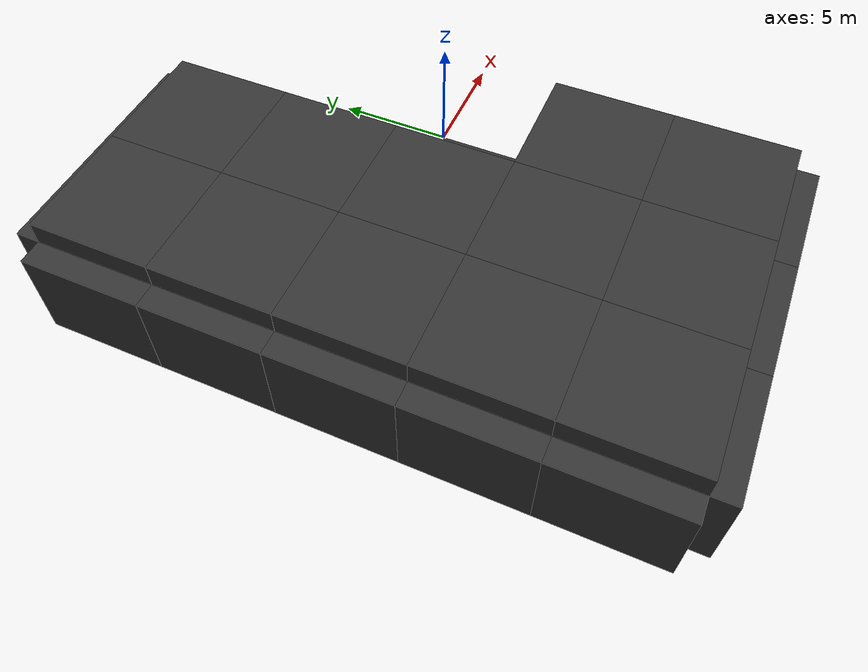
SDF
<sdf version="1.7">
 <world name="RG1">
  <model name="floor_1">
   <static>true</static>
   <pose>-12.5 -12.5 -0.5 0.0 0.0 0.0</pose>
   <link name="floor_1-base-link">
    <visual name="floor_1-visual">
     <geometry><box><size>5 5 1.0</size></box></geometry>
     <material><diffuse>0.2 0.2 0.2 1</diffuse><specular>0.1 0.1 0.1 1</specular></material>
    </visual>
    <collision name="floor_1-collision"><geometry><box><size>5 5 1.0</size></box></geometry></collision>
   </link>
  </model>
  <model name="ceiling_1">
   <static>true</static>
   <pose>-12.5 -12.5 4.5 0.0 0.0 0.0</pose>
   <link name="ceiling_1-base-link">
    <visual name="ceiling_1-visual">
     <geometry><box><size>5 5 1.0</size></box></geometry>
     <material><diffuse>0.2 0.2 0.2 1</diffuse><specular>0.1 0.1 0.1 1</specular></material>
    </visual>
    <collision name="ceiling_1-collision"><geometry><box><size>5 5 1.0</size></box></geometry></collision>
    <light type="point" name="ceiling_1-light">
     <pose>0 0 -1 0 0 0</pose>
     <cast_shadows>false</cast_shadows>
     <diffuse>0.8 0.8 0.8 1</diffuse>
     <attenuation>
      <range>10</range>
      <constant>0.8</constant>
      <linear>0.05</linear>
      <quadratic>0.01</quadratic>
     </attenuation>
    </light>
   </link>
  </model>
  <model name="wall_1">
   <static>true</static>
   <pose>-15.5 -12.5 2.0 0.0 0.0 1.570796326795</pose>
   <link name="wall_1-base-link">
    <visual name="wall_1-visual">
     <geometry><box><size>5 1 4</size></box></geometry>
     <material><diffuse>0.2 0.2 0.2 1</diffuse><specular>0.1 0.1 0.1 1</specular></material>
    </visual>
    <collision name="wall_1-collision"><geometry><box><size>5 1 4</size></box></geometry></collision>
   </link>
  </model>
  <model name="wall_2">
   <static>true</static>
   <pose>-12.5 -15.5 2.0 0.0 0.0 0.0</pose>
   <link name="wall_2-base-link">
    <visual name="wall_2-visual">
     <geometry><box><size>5 1 4</size></box></geometry>
     <material><diffuse>0.2 0.2 0.2 1</diffuse><specular>0.1 0.1 0.1 1</specular></material>
    </visual>
    <collision name="wall_2-collision"><geometry><box><size>5 1 4</size></box></geometry></collision>
   </link>
  </model>
  <model name="floor_2">
   <static>true</static>
   <pose>-12.5 -7.5 -0.5 0.0 0.0 0.0</pose>
   <link name="floor_2-base-link">
    <visual name="floor_2-visual">
     <geometry><box><size>5 5 1.0</size></box></geometry>
     <material><diffuse>0.2 0.2 0.2 1</diffuse><specular>0.1 0.1 0.1 1</specular></material>
    </visual>
    <collision name="floor_2-collision"><geometry><box><size>5 5 1.0</size></box></geometry></collision>
   </link>
  </model>
  <model name="ceiling_2">
   <static>true</static>
   <pose>-12.5 -7.5 4.5 0.0 0.0 0.0</pose>
   <link name="ceiling_2-base-link">
    <visual name="ceiling_2-visual">
     <geometry><box><size>5 5 1.0</size></box></geometry>
     <material><diffuse>0.2 0.2 0.2 1</diffuse><specular>0.1 0.1 0.1 1</specular></material>
    </visual>
    <collision name="ceiling_2-collision"><geometry><box><size>5 5 1.0</size></box></geometry></collision>
    <light type="point" name="ceiling_2-light">
     <pose>0 0 -1 0 0 0</pose>
     <cast_shadows>false</cast_shadows>
     <diffuse>0.8 0.8 0.8 1</diffuse>
     <attenuation>
      <range>10</range>
      <constant>0.8</constant>
      <linear>0.05</linear>
      <quadratic>0.01</quadratic>
     </attenuation>
    </light>
   </link>
  </model>
  <model name="wall_3">
   <static>true</static>
   <pose>-15.5 -7.5 2.0 0.0 0.0 1.570796326795</pose>
   <link name="wall_3-base-link">
    <visual name="wall_3-visual">
     <geometry><box><size>5 1 4</size></box></geometry>
     <material><diffuse>0.2 0.2 0.2 1</diffuse><specular>0.1 0.1 0.1 1</specular></material>
    </visual>
    <collision name="wall_3-collision"><geometry><box><size>5 1 4</size></box></geometry></collision>
   </link>
  </model>
  <model name="floor_3">
   <static>true</static>
   <pose>-12.5 -2.5 -0.5 0.0 0.0 0.0</pose>
   <link name="floor_3-base-link">
    <visual name="floor_3-visual">
     <geometry><box><size>5 5 1.0</size></box></geometry>
     <material><diffuse>0.2 0.2 0.2 1</diffuse><specular>0.1 0.1 0.1 1</specular></material>
    </visual>
    <collision name="floor_3-collision"><geometry><box><size>5 5 1.0</size></box></geometry></collision>
   </link>
  </model>
  <model name="ceiling_3">
   <static>true</static>
   <pose>-12.5 -2.5 4.5 0.0 0.0 0.0</pose>
   <link name="ceiling_3-base-link">
    <visual name="ceiling_3-visual">
     <geometry><box><size>5 5 1.0</size></box></geometry>
     <material><diffuse>0.2 0.2 0.2 1</diffuse><specular>0.1 0.1 0.1 1</specular></material>
    </visual>
    <collision name="ceiling_3-collision"><geometry><box><size>5 5 1.0</size></box></geometry></collision>
    <light type="point" name="ceiling_3-light">
     <pose>0 0 -1 0 0 0</pose>
     <cast_shadows>false</cast_shadows>
     <diffuse>0.8 0.8 0.8 1</diffuse>
     <attenuation>
      <range>10</range>
      <constant>0.8</constant>
      <linear>0.05</linear>
      <quadratic>0.01</quadratic>
     </attenuation>
    </light>
   </link>
  </model>
  <model name="wall_4">
   <static>true</static>
   <pose>-15.5 -2.5 2.0 0.0 0.0 1.570796326795</pose>
   <link name="wall_4-base-link">
    <visual name="wall_4-visual">
     <geometry><box><size>5 1 4</size></box></geometry>
     <material><diffuse>0.2 0.2 0.2 1</diffuse><specular>0.1 0.1 0.1 1</specular></material>
    </visual>
    <collision name="wall_4-collision"><geometry><box><size>5 1 4</size></box></geometry></collision>
   </link>
  </model>
  <model name="floor_4">
   <static>true</static>
   <pose>-12.5 2.5 -0.5 0.0 0.0 0.0</pose>
   <link name="floor_4-base-link">
    <visual name="floor_4-visual">
     <geometry><box><size>5 5 1.0</size></box></geometry>
     <material><diffuse>0.2 0.2 0.2 1</diffuse><specular>0.1 0.1 0.1 1</specular></material>
    </visual>
    <collision name="floor_4-collision"><geometry><box><size>5 5 1.0</size></box></geometry></collision>
   </link>
  </model>
  <model name="ceiling_4">
   <static>true</static>
   <pose>-12.5 2.5 4.5 0.0 0.0 0.0</pose>
   <link name="ceiling_4-base-link">
    <visual name="ceiling_4-visual">
     <geometry><box><size>5 5 1.0</size></box></geometry>
     <material><diffuse>0.2 0.2 0.2 1</diffuse><specular>0.1 0.1 0.1 1</specular></material>
    </visual>
    <collision name="ceiling_4-collision"><geometry><box><size>5 5 1.0</size></box></geometry></collision>
    <light type="point" name="ceiling_4-light">
     <pose>0 0 -1 0 0 0</pose>
     <cast_shadows>false</cast_shadows>
     <diffuse>0.8 0.8 0.8 1</diffuse>
     <attenuation>
      <range>10</range>
      <constant>0.8</constant>
      <linear>0.05</linear>
      <quadratic>0.01</quadratic>
     </attenuation>
    </light>
   </link>
  </model>
  <model name="wall_5">
   <static>true</static>
   <pose>-15.5 2.5 2.0 0.0 0.0 1.570796326795</pose>
   <link name="wall_5-base-link">
    <visual name="wall_5-visual">
     <geometry><box><size>5 1 4</size></box></geometry>
     <material><diffuse>0.2 0.2 0.2 1</diffuse><specular>0.1 0.1 0.1 1</specular></material>
    </visual>
    <collision name="wall_5-collision"><geometry><box><size>5 1 4</size></box></geometry></collision>
   </link>
  </model>
  <model name="floor_5">
   <static>true</static>
   <pose>-12.5 7.5 -0.5 0.0 0.0 0.0</pose>
   <link name="floor_5-base-link">
    <visual name="floor_5-visual">
     <geometry><box><size>5 5 1.0</size></box></geometry>
     <material><diffuse>0.2 0.2 0.2 1</diffuse><specular>0.1 0.1 0.1 1</specular></material>
    </visual>
    <collision name="floor_5-collision"><geometry><box><size>5 5 1.0</size></box></geometry></collision>
   </link>
  </model>
  <model name="ceiling_5">
   <static>true</static>
   <pose>-12.5 7.5 4.5 0.0 0.0 0.0</pose>
   <link name="ceiling_5-base-link">
    <visual name="ceiling_5-visual">
     <geometry><box><size>5 5 1.0</size></box></geometry>
     <material><diffuse>0.2 0.2 0.2 1</diffuse><specular>0.1 0.1 0.1 1</specular></material>
    </visual>
    <collision name="ceiling_5-collision"><geometry><box><size>5 5 1.0</size></box></geometry></collision>
    <light type="point" name="ceiling_5-light">
     <pose>0 0 -1 0 0 0</pose>
     <cast_shadows>false</cast_shadows>
     <diffuse>0.8 0.8 0.8 1</diffuse>
     <attenuation>
      <range>10</range>
      <constant>0.8</constant>
      <linear>0.05</linear>
      <quadratic>0.01</quadratic>
     </attenuation>
    </light>
   </link>
  </model>
  <model name="wall_6">
   <static>true</static>
   <pose>-15.5 7.5 2.0 0.0 0.0 1.570796326795</pose>
   <link name="wall_6-base-link">
    <visual name="wall_6-visual">
     <geometry><box><size>5 1 4</size></box></geometry>
     <material><diffuse>0.2 0.2 0.2 1</diffuse><specular>0.1 0.1 0.1 1</specular></material>
    </visual>
    <collision name="wall_6-collision"><geometry><box><size>5 1 4</size></box></geometry></collision>
   </link>
  </model>
  <model name="wall_7">
   <static>true</static>
   <pose>-12.5 10.5 2.0 0.0 0.0 0.0</pose>
   <link name="wall_7-base-link">
    <visual name="wall_7-visual">
     <geometry><box><size>5 1 4</size></box></geometry>
     <material><diffuse>0.2 0.2 0.2 1</diffuse><specular>0.1 0.1 0.1 1</specular></material>
    </visual>
    <collision name="wall_7-collision"><geometry><box><size>5 1 4</size></box></geometry></collision>
   </link>
  </model>
  <model name="floor_6">
   <static>true</static>
   <pose>-7.5 -12.5 -0.5 0.0 0.0 0.0</pose>
   <link name="floor_6-base-link">
    <visual name="floor_6-visual">
     <geometry><box><size>5 5 1.0</size></box></geometry>
     <material><diffuse>0.2 0.2 0.2 1</diffuse><specular>0.1 0.1 0.1 1</specular></material>
    </visual>
    <collision name="floor_6-collision"><geometry><box><size>5 5 1.0</size></box></geometry></collision>
   </link>
  </model>
  <model name="ceiling_6">
   <static>true</static>
   <pose>-7.5 -12.5 4.5 0.0 0.0 0.0</pose>
   <link name="ceiling_6-base-link">
    <visual name="ceiling_6-visual">
     <geometry><box><size>5 5 1.0</size></box></geometry>
     <material><diffuse>0.2 0.2 0.2 1</diffuse><specular>0.1 0.1 0.1 1</specular></material>
    </visual>
    <collision name="ceiling_6-collision"><geometry><box><size>5 5 1.0</size></box></geometry></collision>
    <light type="point" name="ceiling_6-light">
     <pose>0 0 -1 0 0 0</pose>
     <cast_shadows>false</cast_shadows>
     <diffuse>0.8 0.8 0.8 1</diffuse>
     <attenuation>
      <range>10</range>
      <constant>0.8</constant>
      <linear>0.05</linear>
      <quadratic>0.01</quadratic>
     </attenuation>
    </light>
   </link>
  </model>
  <model name="wall_8">
   <static>true</static>
   <pose>-7.5 -15.5 2.0 0.0 0.0 0.0</pose>
   <link name="wall_8-base-link">
    <visual name="wall_8-visual">
     <geometry><box><size>5 1 4</size></box></geometry>
     <material><diffuse>0.2 0.2 0.2 1</diffuse><specular>0.1 0.1 0.1 1</specular></material>
    </visual>
    <collision name="wall_8-collision"><geometry><box><size>5 1 4</size></box></geometry></collision>
   </link>
  </model>
  <model name="floor_7">
   <static>true</static>
   <pose>-7.5 -7.5 -0.5 0.0 0.0 0.0</pose>
   <link name="floor_7-base-link">
    <visual name="floor_7-visual">
     <geometry><box><size>5 5 1.0</size></box></geometry>
     <material><diffuse>0.2 0.2 0.2 1</diffuse><specular>0.1 0.1 0.1 1</specular></material>
    </visual>
    <collision name="floor_7-collision"><geometry><box><size>5 5 1.0</size></box></geometry></collision>
   </link>
  </model>
  <model name="ceiling_7">
   <static>true</static>
   <pose>-7.5 -7.5 4.5 0.0 0.0 0.0</pose>
   <link name="ceiling_7-base-link">
    <visual name="ceiling_7-visual">
     <geometry><box><size>5 5 1.0</size></box></geometry>
     <material><diffuse>0.2 0.2 0.2 1</diffuse><specular>0.1 0.1 0.1 1</specular></material>
    </visual>
    <collision name="ceiling_7-collision"><geometry><box><size>5 5 1.0</size></box></geometry></collision>
    <light type="point" name="ceiling_7-light">
     <pose>0 0 -1 0 0 0</pose>
     <cast_shadows>false</cast_shadows>
     <diffuse>0.8 0.8 0.8 1</diffuse>
     <attenuation>
      <range>10</range>
      <constant>0.8</constant>
      <linear>0.05</linear>
      <quadratic>0.01</quadratic>
     </attenuation>
    </light>
   </link>
  </model>
  <model name="floor_8">
   <static>true</static>
   <pose>-7.5 -2.5 -0.5 0.0 0.0 0.0</pose>
   <link name="floor_8-base-link">
    <visual name="floor_8-visual">
     <geometry><box><size>5 5 1.0</size></box></geometry>
     <material><diffuse>0.2 0.2 0.2 1</diffuse><specular>0.1 0.1 0.1 1</specular></material>
    </visual>
    <collision name="floor_8-collision"><geometry><box><size>5 5 1.0</size></box></geometry></collision>
   </link>
  </model>
  <model name="ceiling_8">
   <static>true</static>
   <pose>-7.5 -2.5 4.5 0.0 0.0 0.0</pose>
   <link name="ceiling_8-base-link">
    <visual name="ceiling_8-visual">
     <geometry><box><size>5 5 1.0</size></box></geometry>
     <material><diffuse>0.2 0.2 0.2 1</diffuse><specular>0.1 0.1 0.1 1</specular></material>
    </visual>
    <collision name="ceiling_8-collision"><geometry><box><size>5 5 1.0</size></box></geometry></collision>
    <light type="point" name="ceiling_8-light">
     <pose>0 0 -1 0 0 0</pose>
     <cast_shadows>false</cast_shadows>
     <diffuse>0.8 0.8 0.8 1</diffuse>
     <attenuation>
      <range>10</range>
      <constant>0.8</constant>
      <linear>0.05</linear>
      <quadratic>0.01</quadratic>
     </attenuation>
    </light>
   </link>
  </model>
  <model name="floor_9">
   <static>true</static>
   <pose>-7.5 2.5 -0.5 0.0 0.0 0.0</pose>
   <link name="floor_9-base-link">
    <visual name="floor_9-visual">
     <geometry><box><size>5 5 1.0</size></box></geometry>
     <material><diffuse>0.2 0.2 0.2 1</diffuse><specular>0.1 0.1 0.1 1</specular></material>
    </visual>
    <collision name="floor_9-collision"><geometry><box><size>5 5 1.0</size></box></geometry></collision>
   </link>
  </model>
  <model name="ceiling_9">
   <static>true</static>
   <pose>-7.5 2.5 4.5 0.0 0.0 0.0</pose>
   <link name="ceiling_9-base-link">
    <visual name="ceiling_9-visual">
     <geometry><box><size>5 5 1.0</size></box></geometry>
     <material><diffuse>0.2 0.2 0.2 1</diffuse><specular>0.1 0.1 0.1 1</specular></material>
    </visual>
    <collision name="ceiling_9-collision"><geometry><box><size>5 5 1.0</size></box></geometry></collision>
    <light type="point" name="ceiling_9-light">
     <pose>0 0 -1 0 0 0</pose>
     <cast_shadows>false</cast_shadows>
     <diffuse>0.8 0.8 0.8 1</diffuse>
     <attenuation>
      <range>10</range>
      <constant>0.8</constant>
      <linear>0.05</linear>
      <quadratic>0.01</quadratic>
     </attenuation>
    </light>
   </link>
  </model>
  <model name="floor_10">
   <static>true</static>
   <pose>-7.5 7.5 -0.5 0.0 0.0 0.0</pose>
   <link name="floor_10-base-link">
    <visual name="floor_10-visual">
     <geometry><box><size>5 5 1.0</size></box></geometry>
     <material><diffuse>0.2 0.2 0.2 1</diffuse><specular>0.1 0.1 0.1 1</specular></material>
    </visual>
    <collision name="floor_10-collision"><geometry><box><size>5 5 1.0</size></box></geometry></collision>
   </link>
  </model>
  <model name="ceiling_10">
   <static>true</static>
   <pose>-7.5 7.5 4.5 0.0 0.0 0.0</pose>
   <link name="ceiling_10-base-link">
    <visual name="ceiling_10-visual">
     <geometry><box><size>5 5 1.0</size></box></geometry>
     <material><diffuse>0.2 0.2 0.2 1</diffuse><specular>0.1 0.1 0.1 1</specular></material>
    </visual>
    <collision name="ceiling_10-collision"><geometry><box><size>5 5 1.0</size></box></geometry></collision>
    <light type="point" name="ceiling_10-light">
     <pose>0 0 -1 0 0 0</pose>
     <cast_shadows>false</cast_shadows>
     <diffuse>0.8 0.8 0.8 1</diffuse>
     <attenuation>
      <range>10</range>
      <constant>0.8</constant>
      <linear>0.05</linear>
      <quadratic>0.01</quadratic>
     </attenuation>
    </light>
   </link>
  </model>
  <model name="wall_9">
   <static>true</static>
   <pose>-7.5 10.5 2.0 0.0 0.0 0.0</pose>
   <link name="wall_9-base-link">
    <visual name="wall_9-visual">
     <geometry><box><size>5 1 4</size></box></geometry>
     <material><diffuse>0.2 0.2 0.2 1</diffuse><specular>0.1 0.1 0.1 1</specular></material>
    </visual>
    <collision name="wall_9-collision"><geometry><box><size>5 1 4</size></box></geometry></collision>
   </link>
  </model>
  <model name="floor_11">
   <static>true</static>
   <pose>-2.5 -12.5 -0.5 0.0 0.0 0.0</pose>
   <link name="floor_11-base-link">
    <visual name="floor_11-visual">
     <geometry><box><size>5 5 1.0</size></box></geometry>
     <material><diffuse>0.2 0.2 0.2 1</diffuse><specular>0.1 0.1 0.1 1</specular></material>
    </visual>
    <collision name="floor_11-collision"><geometry><box><size>5 5 1.0</size></box></geometry></collision>
   </link>
  </model>
  <model name="ceiling_11">
   <static>true</static>
   <pose>-2.5 -12.5 4.5 0.0 0.0 0.0</pose>
   <link name="ceiling_11-base-link">
    <visual name="ceiling_11-visual">
     <geometry><box><size>5 5 1.0</size></box></geometry>
     <material><diffuse>0.2 0.2 0.2 1</diffuse><specular>0.1 0.1 0.1 1</specular></material>
    </visual>
    <collision name="ceiling_11-collision"><geometry><box><size>5 5 1.0</size></box></geometry></collision>
    <light type="point" name="ceiling_11-light">
     <pose>0 0 -1 0 0 0</pose>
     <cast_shadows>false</cast_shadows>
     <diffuse>0.8 0.8 0.8 1</diffuse>
     <attenuation>
      <range>10</range>
      <constant>0.8</constant>
      <linear>0.05</linear>
      <quadratic>0.01</quadratic>
     </attenuation>
    </light>
   </link>
  </model>
  <model name="wall_10">
   <static>true</static>
   <pose>-2.5 -15.5 2.0 0.0 0.0 0.0</pose>
   <link name="wall_10-base-link">
    <visual name="wall_10-visual">
     <geometry><box><size>5 1 4</size></box></geometry>
     <material><diffuse>0.2 0.2 0.2 1</diffuse><specular>0.1 0.1 0.1 1</specular></material>
    </visual>
    <collision name="wall_10-collision"><geometry><box><size>5 1 4</size></box></geometry></collision>
   </link>
  </model>
  <model name="floor_12">
   <static>true</static>
   <pose>-2.5 -7.5 -0.5 0.0 0.0 0.0</pose>
   <link name="floor_12-base-link">
    <visual name="floor_12-visual">
     <geometry><box><size>5 5 1.0</size></box></geometry>
     <material><diffuse>0.2 0.2 0.2 1</diffuse><specular>0.1 0.1 0.1 1</specular></material>
    </visual>
    <collision name="floor_12-collision"><geometry><box><size>5 5 1.0</size></box></geometry></collision>
   </link>
  </model>
  <model name="ceiling_12">
   <static>true</static>
   <pose>-2.5 -7.5 4.5 0.0 0.0 0.0</pose>
   <link name="ceiling_12-base-link">
    <visual name="ceiling_12-visual">
     <geometry><box><size>5 5 1.0</size></box></geometry>
     <material><diffuse>0.2 0.2 0.2 1</diffuse><specular>0.1 0.1 0.1 1</specular></material>
    </visual>
    <collision name="ceiling_12-collision"><geometry><box><size>5 5 1.0</size></box></geometry></collision>
    <light type="point" name="ceiling_12-light">
     <pose>0 0 -1 0 0 0</pose>
     <cast_shadows>false</cast_shadows>
     <diffuse>0.8 0.8 0.8 1</diffuse>
     <attenuation>
      <range>10</range>
      <constant>0.8</constant>
      <linear>0.05</linear>
      <quadratic>0.01</quadratic>
     </attenuation>
    </light>
   </link>
  </model>
  <model name="floor_13">
   <static>true</static>
   <pose>-2.5 -2.5 -0.5 0.0 0.0 0.0</pose>
   <link name="floor_13-base-link">
    <visual name="floor_13-visual">
     <geometry><box><size>5 5 1.0</size></box></geometry>
     <material><diffuse>0.2 0.2 0.2 1</diffuse><specular>0.1 0.1 0.1 1</specular></material>
    </visual>
    <collision name="floor_13-collision"><geometry><box><size>5 5 1.0</size></box></geometry></collision>
   </link>
  </model>
 </world>
</sdf>
